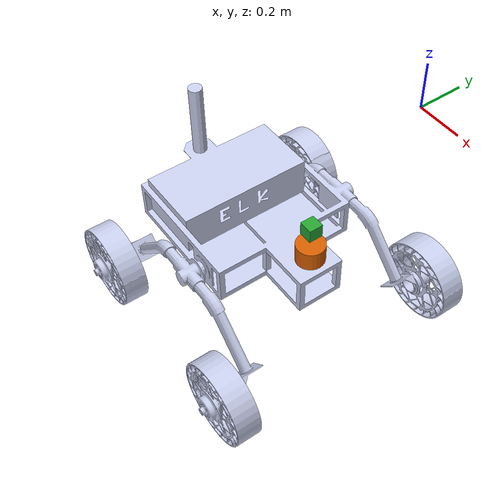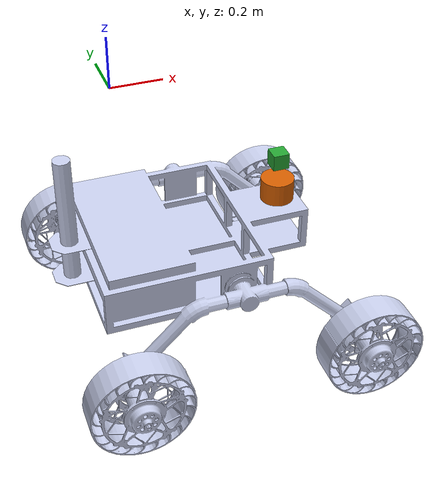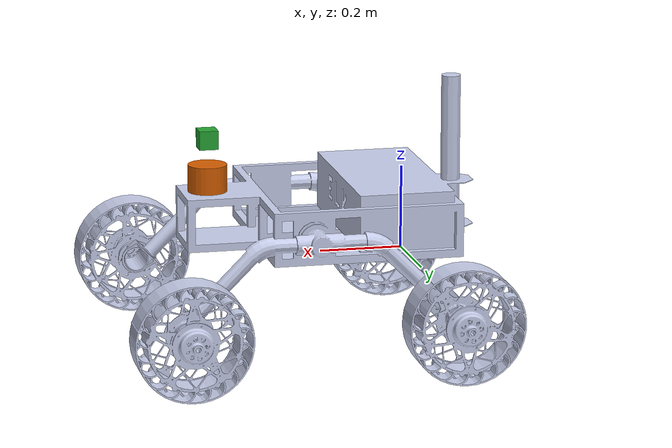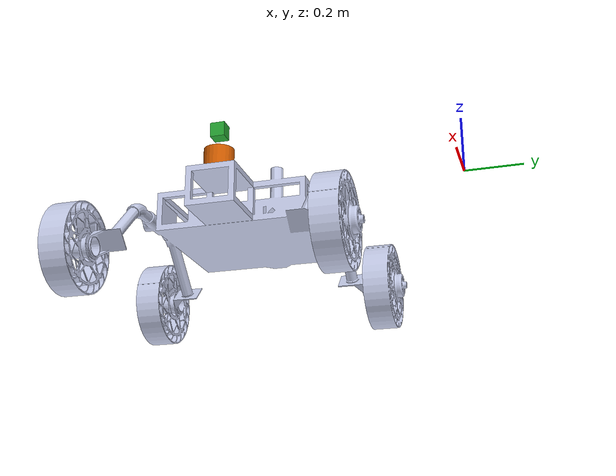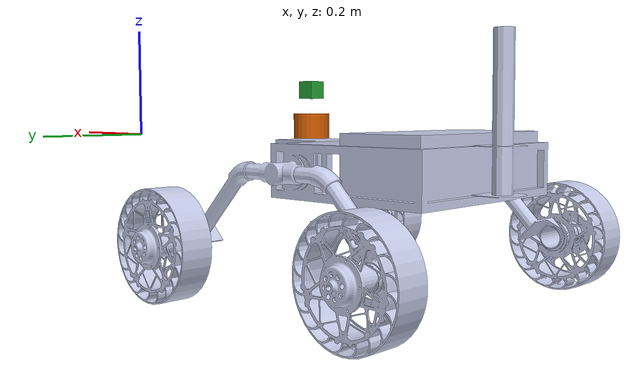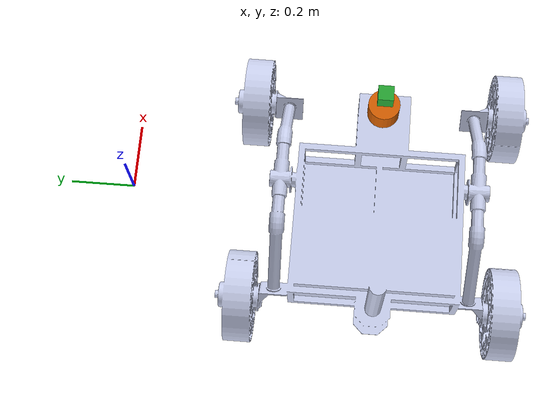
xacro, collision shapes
<?xml version="1.0" encoding="utf-8"?>
<robot
  name="altyurur_20" xmlns:xacro="http://www.ros.org/wiki/xacro">

  <xacro:include filename="$(find rover_20_description)/urdf/vlp16.urdf.xacro"/>
  <xacro:property name="cameraSize" value="0.05"/>
  <xacro:property name="cameraMass" value="0.1"/>

  <link
    name="base_link">
    <inertial>
      <origin
        xyz="0.036648 -0.78 -0.1149"
        rpy="0 0 0" />
      <mass
        value="7.6922" />
      <inertia
        ixx="0.16992"
        ixy="-1.2309E-05"
        ixz="0.040329"
        iyy="0.48212"
        iyz="-1.555E-07"
        izz="0.54282" />
    </inertial>
    <visual>
      <origin
        xyz="0 0 0"
        rpy="0 0 0" />
      <geometry>
        <mesh
          filename="package://rover_20_description/meshes/base_link.STL" />
      </geometry>
      <material
        name="">
        <color
          rgba="0.79216 0.81961 0.93333 1" />
      </material>
    </visual>
    <collision>
      <origin
        xyz="0 0 0"
        rpy="0 0 0" />
      <geometry>
        <mesh
          filename="package://rover_20_description/meshes/base_link.STL" />
      </geometry>
    </collision>
  </link>
  <link
    name="left_front_link">
    <inertial>
      <origin
        xyz="-3.0122E-05 0.00014177 0.082453"
        rpy="0 0 0" />
      <mass
        value="1.1573" />
      <inertia
        ixx="0.0096934"
        ixy="-5.9959E-08"
        ixz="-1.119E-06"
        iyy="0.0096827"
        iyz="2.2683E-06"
        izz="0.01783" />
    </inertial>
    <visual>
      <origin
        xyz="0 0 0"
        rpy="0 0 0" />
      <geometry>
        <mesh
          filename="package://rover_20_description/meshes/left_front_linkk.STL" />
      </geometry>
      <material
        name="">
        <color
          rgba="0.79216 0.81961 0.93333 1" />
      </material>
    </visual>
    <collision>
      <origin
        xyz="0 0 0"
        rpy="0 0 0" />
      <geometry>
        <mesh
          filename="package://rover_20_description/meshes/left_front_linkk.STL" />
      </geometry>
    </collision>
  </link>
  <joint
    name="left_front_joint"
    type="continuous">
    <origin
      xyz="0.45031 -0.2596 -0.31064"
      rpy="1.5708 1.2698 0" />
    <parent
      link="base_link" />
    <child
      link="left_front_link" />
    <axis
      xyz="0 0 -1" />
  </joint>
  <link
    name="right_front_link">
    <inertial>
      <origin
        xyz="-2.8756E-05 0.00014342 0.07551"
        rpy="0 0 0" />
      <mass
        value="1.1573" />
      <inertia
        ixx="0.0096937"
        ixy="2.8004E-07"
        ixz="-1.119E-06"
        iyy="0.0096825"
        iyz="2.2683E-06"
        izz="0.01783" />
    </inertial>
    <visual>
      <origin
        xyz="0 0 0"
        rpy="0 0 0" />
      <geometry>
        <mesh
          filename="package://rover_20_description/meshes/right_front_link.STL" />
      </geometry>
      <material
        name="">
        <color
          rgba="0.79216 0.81961 0.93333 1" />
      </material>
    </visual>
    <collision>
      <origin
        xyz="0 0 0"
        rpy="0 0 0" />
      <geometry>
        <mesh
          filename="package://rover_20_description/meshes/right_front_link.STL" />
      </geometry>
    </collision>
  </link>
  <joint
    name="right_front_joint"
    type="continuous">
    <origin
      xyz="0.45155 -1.1425 -0.31113"
      rpy="1.5708 -1.0421 0" />
    <parent
      link="base_link" />
    <child
      link="right_front_link" />
    <axis
      xyz="0 0 -1" />
  </joint>
  <link
    name="right_rear_link">
    <inertial>
      <origin
        xyz="-3.0122E-05 0.00014177 0.07551"
        rpy="0 0 0" />
      <mass
        value="1.1573" />
      <inertia
        ixx="0.0096934"
        ixy="-5.9909E-08"
        ixz="-1.119E-06"
        iyy="0.0096827"
        iyz="2.2683E-06"
        izz="0.01783" />
    </inertial>
    <visual>
      <origin
        xyz="0 0 0"
        rpy="0 0 0" />
      <geometry>
        <mesh
          filename="package://rover_20_description/meshes/right_rear_link.STL" />
      </geometry>
      <material
        name="">
        <color
          rgba="0.79216 0.81961 0.93333 1" />
      </material>
    </visual>
    <collision>
      <origin
        xyz="0 0 0"
        rpy="0 0 0" />
      <geometry>
        <mesh
          filename="package://rover_20_description/meshes/right_rear_link.STL" />
      </geometry>
    </collision>
  </link>
  <joint
    name="right_rear_joint"
    type="continuous">
    <origin
      xyz="-0.25574 -1.1425 -0.31006"
      rpy="1.5708 1.2698 0" />
    <parent
      link="base_link" />
    <child
      link="right_rear_link" />
    <axis
      xyz="0 0 -1" />
  </joint>
  <link
    name="left_rear_link">
    <inertial>
      <origin
        xyz="-2.9287E-05 0.00014265 0.082453"
        rpy="0 0 0" />
      <mass
        value="1.1573" />
      <inertia
        ixx="0.0096936"
        ixy="1.0425E-07"
        ixz="-1.119E-06"
        iyy="0.0096826"
        iyz="2.2683E-06"
        izz="0.01783" />
    </inertial>
    <visual>
      <origin
        xyz="0 0 0"
        rpy="0 0 0" />
      <geometry>
        <mesh
          filename="package://rover_20_description/meshes/left_rear_link.STL" />
      </geometry>
      <material
        name="">
        <color
          rgba="0.79216 0.81961 0.93333 1" />
      </material>
    </visual>
    <collision>
      <origin
        xyz="0 0 0"
        rpy="0 0 0" />
      <geometry>
        <mesh
          filename="package://rover_20_description/meshes/left_rear_link.STL" />
      </geometry>
    </collision>
  </link>
  <joint
    name="left_rear_joint"
    type="continuous">
    <origin
      xyz="-0.25698 -0.2596 -0.31054"
      rpy="1.5708 0.64514 0" />
    <parent
      link="base_link" />
    <child
      link="left_rear_link" />
    <axis
      xyz="0 0 -1" />
  </joint>

  <vlp16 prefix="base" topic="/velodyne_points" hz="10" samples="440" gpu="false" max_range="5.0" min_range="0.1" min_angle="-2.39982772" max_angle="2.39982772"/>

  <joint name="base_laser_joint" type="fixed">
    <origin xyz="0.325 -0.775 -0.035" rpy="0 0 0" />
    <parent link="base_link"/>
    <child link="velodyne"/>
  </joint>

  <link name="camera">
    <collision>
      <origin xyz="0 0 0" rpy="0 0 0"/>
      <geometry>
        <box size="${cameraSize} ${cameraSize} ${cameraSize}"/>
      </geometry>
    </collision>

    <visual>
      <origin xyz="0 0 0" rpy="0 0 0"/>
      <geometry>
        <box size="${cameraSize} ${cameraSize} ${cameraSize}"/>
      </geometry>
      <material name="green"/>
    </visual>

    <inertial>
      <mass value="${cameraMass}" />
      <origin xyz="0 0 0" rpy="0 0 0"/>
      <box_inertia m="${cameraMass}" x="${cameraSize}" y="${cameraSize}" z="${cameraSize}" />
      <inertia ixx="1e-6" ixy="0" ixz="0" iyy="1e-6" iyz="0" izz="1e-6" />
    </inertial>
  </link>

  <joint name="camera_joint" type="fixed">
    <axis xyz="1 1 0" />
    <origin xyz="0.325 -0.775 0.105" rpy="0 0 0"/>
    <parent link="base_link"/>
    <child link="camera"/>
  </joint>

  <transmission name="left_front_trans" type="SimpleTransmission">
    <type>transmission_interface/SimpleTransmission</type>
    <actuator name="left_front_motor">
      <mechanicalReduction>1</mechanicalReduction>
    </actuator>
    <joint name="left_front_joint">
      <hardwareInterface>hardware_interface/VelocityJointInterface</hardwareInterface>
    </joint>
  </transmission>

  <transmission name="right_front_trans" type="SimpleTransmission">
    <type>transmission_interface/SimpleTransmission</type>
    <actuator name="right_front_motor">
      <mechanicalReduction>1</mechanicalReduction>
    </actuator>
    <joint name="right_front_joint">
      <hardwareInterface>hardware_interface/VelocityJointInterface</hardwareInterface>
    </joint>
  </transmission>

  <transmission name="left_rear_trans" type="SimpleTransmission">
    <type>transmission_interface/SimpleTransmission</type>
    <actuator name="left_rear_motor">
      <mechanicalReduction>1</mechanicalReduction>
    </actuator>
    <joint name="left_rear_joint">
      <hardwareInterface>hardware_interface/VelocityJointInterface</hardwareInterface>
    </joint>
  </transmission>

  <transmission name="right_rear_trans" type="SimpleTransmission">
    <type>transmission_interface/SimpleTransmission</type>
    <actuator name="right_rear_motor">
      <mechanicalReduction>1</mechanicalReduction>
    </actuator>
    <joint name="right_rear_joint">
      <hardwareInterface>hardware_interface/VelocityJointInterface</hardwareInterface>
    </joint>
  </transmission>

  <gazebo>
    <plugin name="gazebo_ros_control" filename="libgazebo_ros_control.so">
      <robotSimType>gazebo_ros_control/DefaultRobotHWSim</robotSimType>
      <legacyModeNS>true</legacyModeNS>
    </plugin>
  </gazebo>

   <gazebo>
    <plugin name="imu_controller" filename="libhector_gazebo_ros_imu.so">
      <updateRate>30.0</updateRate>
      <bodyName>base_link</bodyName>
      <topicName>/imu/data</topicName>
      <accelDrift>0.005 0.005 0.005</accelDrift>
      <accelGaussianNoise>0.005 0.005 0.005</accelGaussianNoise>
      <rateDrift>0.005 0.005 0.005 </rateDrift>
      <rateGaussianNoise>0.005 0.005 0.005 </rateGaussianNoise>
      <headingDrift>0.005</headingDrift>[ERROR] [1555346159.311804930, 0.098000000]:
      <headingGaussianNoise>0.005</headingGaussianNoise>
    </plugin>
  </gazebo>

  <gazebo>
    <plugin name="gps_controller" filename="libhector_gazebo_ros_gps.so">
      <updateRate>30</updateRate>
      <bodyName>base_link</bodyName>
      <frameId>base_link</frameId>
      <topicName>gps/fix</topicName>
      <velocityTopicName>navsat/vel</velocityTopicName>
      <referenceLatitude>41.1052670854</referenceLatitude>
      <referenceLongitude>29.023378124</referenceLongitude>
      <referenceHeading>0</referenceHeading>
      <referenceAltitude>0</referenceAltitude>
      <drift>0.0001 0.0001 0.0001</drift>
    </plugin>
  </gazebo>

  <gazebo reference="camera">
     <sensor type="camera" name="camera">
       <update_rate>30.0</update_rate>
       <camera name="camera">
         <horizontal_fov>1.3962634</horizontal_fov>
         <image>
           <width>800</width>
           <height>800</height>
           <format>R8G8B8</format>
         </image>
         <clip>
           <near>0.02</near>
           <far>300</far>
         </clip>
         <noise>
           <type>gaussian</type>
           <mean>0.0</mean>
           <stddev>0.007</stddev>
         </noise>
       </camera>
       <plugin name="camera_controller" filename="libgazebo_ros_camera.so">
         <alwaysOn>true</alwaysOn>
         <updateRate>0.0</updateRate>
         <cameraName>/rover_20/camera</cameraName>
         <imageTopicName>camera_view</imageTopicName>
         <cameraInfoTopicName>camera_info</cameraInfoTopicName>
         <frameName>camera</frameName>
         <hackBaseline>0.07</hackBaseline>
         <distortionK1>0.0</distortionK1>
         <distortionK2>0.0</distortionK2>
         <distortionK3>0.0</distortionK3>
         <distortionT1>0.0</distortionT1>
         <distortionT2>0.0</distortionT2>
       </plugin>
     </sensor>
   </gazebo>
</robot>

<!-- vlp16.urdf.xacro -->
<robot xmlns:xacro="http://ros.org/wiki/xacro" name="vlp_16_sensor">

	<xacro:property name="M_PI" value="3.1415926535897931" />

	<xacro:macro name="vlp16" params="prefix:=base topic:=/velodyne_points hz:=10 lasers:=16 samples:=1875 collision_range:=0.3 min_range:=0.9 max_range:=200.0 noise:=0.008 min_angle:=-${M_PI} max_angle:=${M_PI} gpu:=true">

		<link name="velodyne">
			<inertial>
        <mass value="0.83"/>
	        <origin xyz="0 0 0.03585"/>
	        <inertia ixx="${(0.83 * (3.0*0.0516*0.0516 + 0.0717*0.0717)) / 12.0}" ixy="0" ixz="0" iyy="${(0.83 * (3.0*0.0516*0.0516 + 0.0717*0.0717)) / 12.0}" iyz="0"
	        izz="${0.5 * 0.83 * (0.0516*0.0516)}"/>
	    </inertial>

			<visual>
				<geometry>
        	<mesh filename="package://rover_20_description/meshes/VLP16_base_1.dae" />
        </geometry>
			</visual>

			<visual>
    		<geometry>
      		<mesh filename="package://rover_20_description/meshes/VLP16_base_2.dae" />
    		</geometry>
  		</visual>

  		<collision>
        <origin rpy="0 0 0" xyz="0 0 0.03585"/>
        <geometry>
        <cylinder radius="0.0516" length="0.0717"/>
        </geometry>
      </collision>
		</link>

		<joint name="vlp16_base_scan_joint" type="fixed">
			<origin xyz="0 0 0.0377" rpy="0 0 0" />
      <parent link="velodyne" />
      <child link="vlp16_scan"/>
		</joint>

		<link name="vlp16_scan">
      <inertial>
        <mass value="0.01"/>
        <origin xyz="0 0 0"/>
        <inertia ixx="1e-7" ixy="0" ixz="0" iyy="1e-7" iyz="0" izz="1e-7"/>
      </inertial>
      <visual>
        <origin xyz="0 0 -0.0377" />
        <geometry>
          <mesh filename="package://rover_20_description/meshes/VLP16_scan.dae" />
        </geometry>
      </visual>
    </link>

		<gazebo reference="velodyne">
      <sensor type="ray" name="vlp16_sensor">
        <pose>0 0 0 0 0 0</pose>
        <visualize>false</visualize>
        <update_rate>${hz}</update_rate>
					<ray>
					  <scan>
					    <horizontal>
					      <samples>${samples}</samples>
					      <resolution>1</resolution>
					      <min_angle>${min_angle}</min_angle>
					      <max_angle>${max_angle}</max_angle>
					    </horizontal>
					    <vertical>
					      <samples>${lasers}</samples>
					      <resolution>1</resolution>
					      <min_angle>0</min_angle><!---${15.0*M_PI/180.0}-->
					      <max_angle> ${15.0*M_PI/180.0}</max_angle>
					    </vertical>
					  </scan>
					  <range>
					    <min>${collision_range}</min>
					    <max>${max_range+1}</max>
					    <resolution>0.001</resolution>
					  </range>
					  <noise>
					    <type>gaussian</type>
					    <mean>0.0</mean>
					    <stddev>0.0</stddev>
					  </noise>
					</ray>

        <plugin name="gazebo_ros_laser_controller" filename="libgazebo_ros_velodyne_laser.so">
          <topicName>${topic}</topicName>
          <frameName>vlp16_scan</frameName>
          <min_range>${min_range}</min_range>
          <max_range>${max_range}</max_range>
          <gaussianNoise>${noise}</gaussianNoise>
        </plugin>
      </sensor>
    </gazebo>
	</xacro:macro>
</robot>
